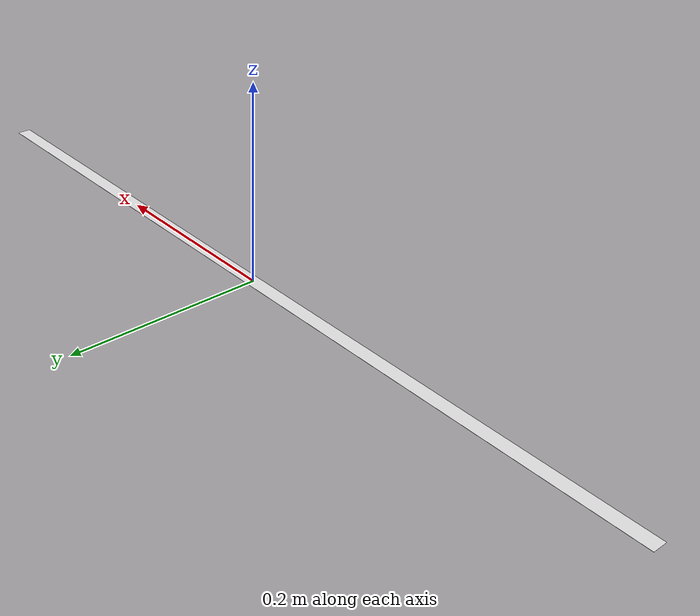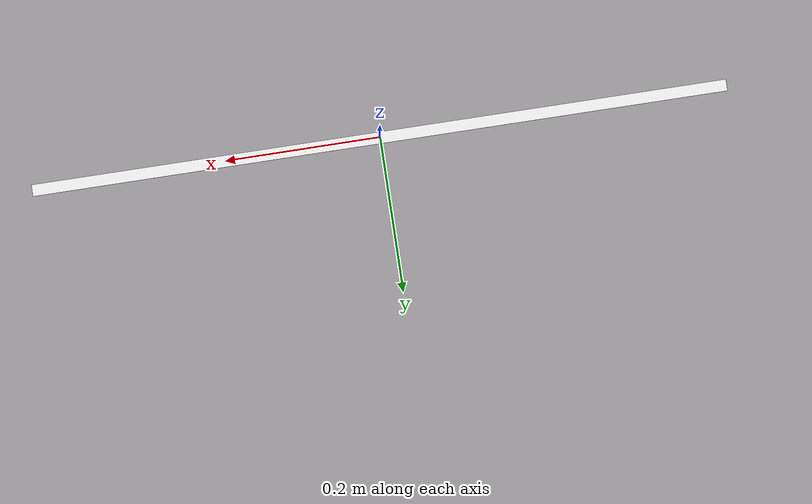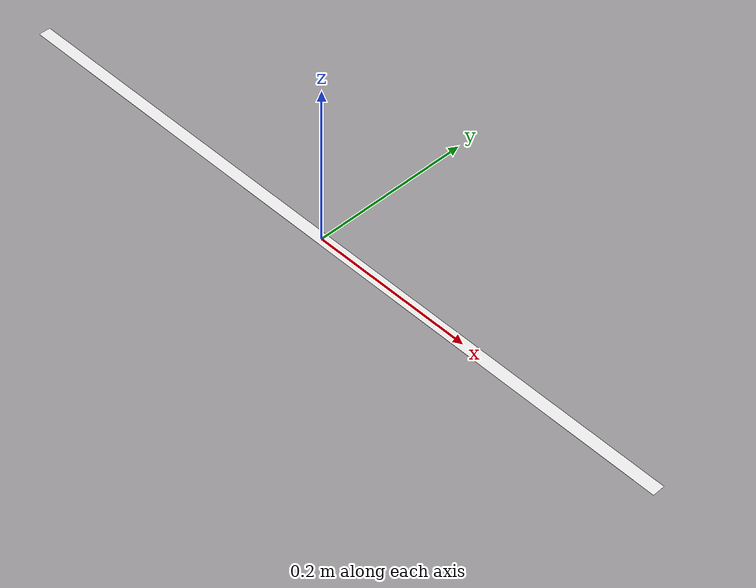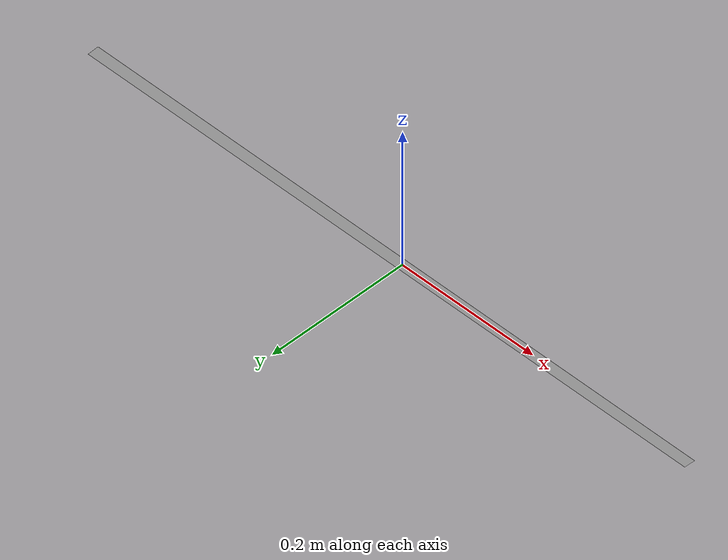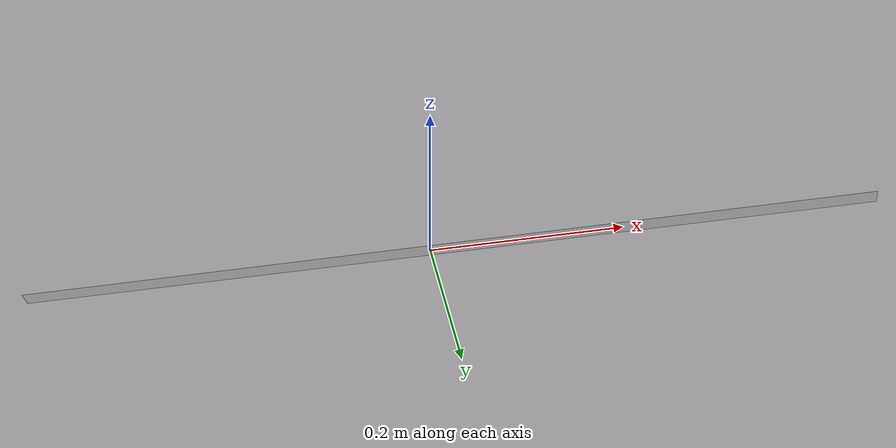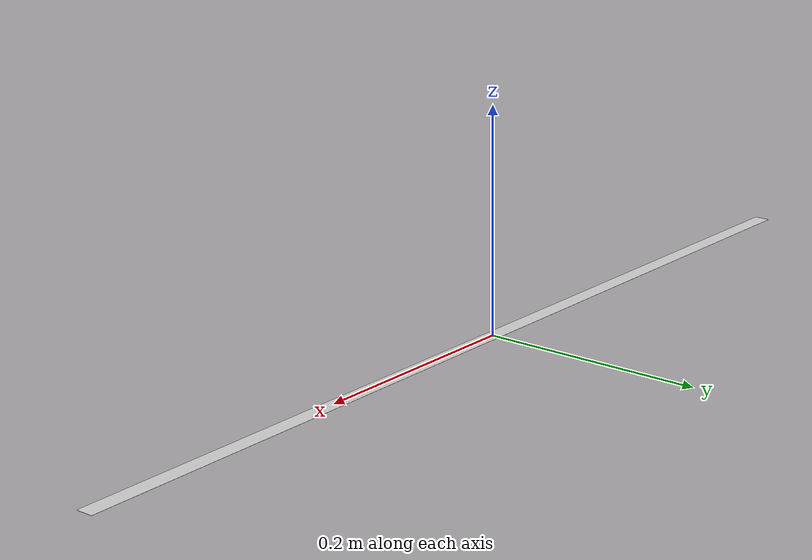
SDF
<?xml version="1.0" ?>
<sdf version="1.5">
  <model name="hac_white_tape">
    <link name="link">
      <pose>0 0 0.00005 0 0 0</pose>
      <inertial>
        <mass>0.001</mass>
        <inertia>
          <ixx>1.8751e-8</ixx>
          <ixy>0</ixy>
          <ixz>0</ixz>
          <iyy>6.7500e-5</iyy>
          <iyz>0</iyz>
          <izz>6.7519e-5</izz>
        </inertia>
      </inertial>

      <collision name='collision'>
        <geometry>
          <box>
            <size>0.9 0.015 0.0001</size>
          </box>
        </geometry>
      </collision>

      <visual name='visual'>
        <geometry>
          <box>
            <size>0.9 0.015 0.0001</size>
          </box>
        </geometry>
        <material>
          <script>
            <uri>file://media/materials/scripts/gazebo.material</uri>
            <name>Gazebo/White</name>
          </script>
        </material>
      </visual>
    </link>

  </model>
</sdf>
